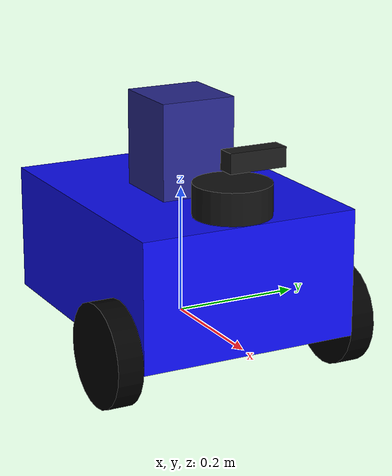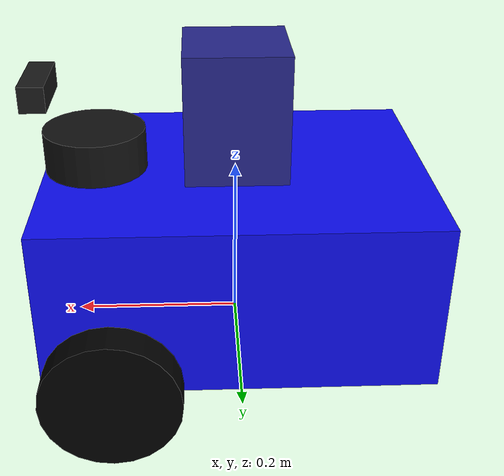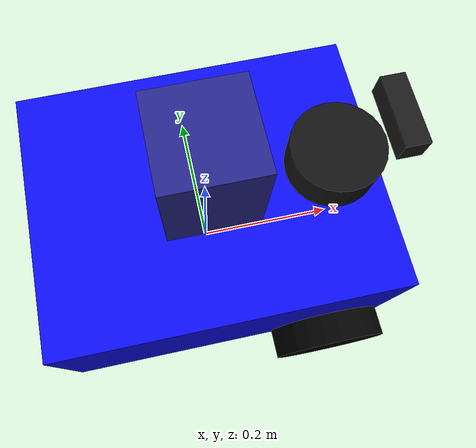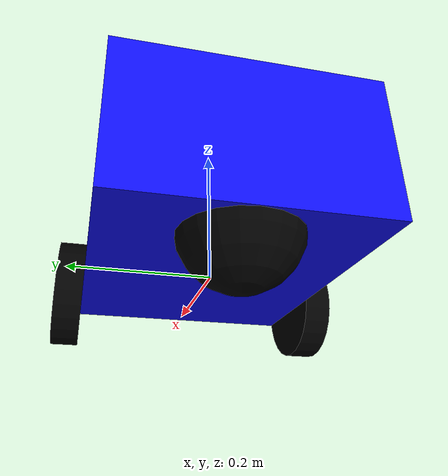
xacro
<?xml version="1.0"?>

<robot name="justina_base" xmlns:xacro="http://www.ros.org/wiki/xacro">

    <!-- Robot Parameters -->
    <xacro:property name="PI" value="3.14159265"/>

    <xacro:property name="body_length" value="0.45"/>
    <xacro:property name="body_width" value="0.35"/>
    <xacro:property name="body_height" value="0.20"/>
    <xacro:property name="body_mass" value="20"/>
    <xacro:property name="body_inertia_x" value="${1.0/12.0 * body_mass * (body_height*body_height + body_width*body_width)}"/>
    <xacro:property name="body_inertia_y" value="${1.0/12.0 * body_mass * (body_length*body_length + body_height*body_height)}"/>
    <xacro:property name="body_inertia_z" value="${1.0/12.0 * body_mass * (body_length*body_length + body_width*body_width)}"/>

    <xacro:property name="arm_base_length" value="0.12"/>
    <xacro:property name="arm_base_width" value="0.12"/>
    <xacro:property name="arm_base_height" value="0.16"/>
    <xacro:property name="arm_base_mass" value="1"/>
    <xacro:property name="arm_base_inertia_x" value="${1.0/12.0 * arm_base_mass * (arm_base_height*arm_base_height + arm_base_width* arm_base_width)}"/>
    <xacro:property name="arm_base_inertia_y" value="${1.0/12.0 * arm_base_mass * (arm_base_length*arm_base_length + arm_base_height*arm_base_height)}"/>
    <xacro:property name="arm_base_inertia_z" value="${1.0/12.0 * arm_base_mass * (arm_base_length*arm_base_length + arm_base_width* arm_base_width)}"/>

    <xacro:property name="wheel_radius" value="0.08"/>
    <xacro:property name="wheel_width" value="0.04"/>
    <xacro:property name="wheel_separation" value="${body_width + wheel_width}"/>
    <xacro:property name="wheel_offset" value="${body_length/2 - wheel_radius}"/>
    <xacro:property name="wheel_offset_z" value="0.05"/>
    <xacro:property name="wheel_density" value="900"/> <!-- Ruber -->
    <xacro:property name="wheel_mass" value="${wheel_density * PI * wheel_radius * wheel_radius * wheel_width}"/>
    <xacro:property name="wheel_inertia_x" value="${1.0/12.0 * wheel_mass * (3*wheel_radius*wheel_radius + wheel_width*wheel_width)}"/>
    <xacro:property name="wheel_inertia_y" value="${1.0/12.0 * wheel_mass * (3*wheel_radius*wheel_radius + wheel_width*wheel_width)}"/>
    <xacro:property name="wheel_inertia_z" value="${1.0/2.0 * wheel_mass * wheel_radius * wheel_radius}"/>

    <xacro:property name="caster_radius" value="0.08"/>
    <xacro:property name="caster_offset" value="${body_length/2 - caster_radius}"/>
    <xacro:property name="caster_density" value="0.1"/>
    <xacro:property name="caster_mass" value="${caster_density * 4.0/3.0 * PI * caster_radius * caster_radius * caster_radius}"/>
    <xacro:property name="caster_inertia_x" value="${2.0/5.0 * caster_mass * caster_radius * caster_radius}"/>
    <xacro:property name="caster_inertia_y" value="${2.0/5.0 * caster_mass * caster_radius * caster_radius}"/>
    <xacro:property name="caster_inertia_z" value="${2.0/5.0 * caster_mass * caster_radius * caster_radius}"/>

    <xacro:property name="laser_radius" value="0.06"/>
    <xacro:property name="laser_height" value="0.05"/>
    <xacro:property name="laser_mass" value="0.2"/>
    <xacro:property name="laser_inertia_xx" value="${(1/12) * laser_mass * (3*laser_radius*laser_radius + laser_height*laser_height)}"/>
    <xacro:property name="laser_inertia_yy" value="${(1/12) * laser_mass * (3*laser_radius*laser_radius + laser_height*laser_height)}"/>
    <xacro:property name="laser_inertia_zz" value="${(1/2) * laser_mass * laser_radius*laser_radius}"/>

    <!-- Control Parameters -->
    <xacro:property name="max_linear_acceleration" value="10"/>

    <!-- Links -->
    <link name="base_link"/>
    <!-- Body Link -->
    <link name="body_link">
        <visual>
            <origin xyz="0.0 0.0 0.0" rpy="0.0 0.0 0.0"/>
            <geometry>
                <box size="${body_length} ${body_width} ${body_height}"/>
            </geometry>
            <material name="body_material">
                <color rgba="0.05 0.05 0.95 1.0"/>
            </material>
        </visual>
        <collision>
            <origin xyz="0.0 0.0 0.0" rpy="0.0 0.0 0.0"/>
            <geometry>
                <box size="${body_length} ${body_width} ${body_height}"/>
            </geometry>
        </collision>
        <inertial>
            <mass value="${body_mass}"/>
            <inertia ixx="${body_inertia_x}" ixy="0.0" ixz="0.0" iyy="${body_inertia_y}" iyz="0" izz="${body_inertia_z}"/>
            <origin xyz="0 0 0" rpy="0 0 0"/>
        </inertial>
    </link>

    <link name="arm_base_link">
        <visual>
            <origin xyz="0.0 0.0 0.0" rpy="0.0 0.0 0.0"/>
            <geometry>
                <box size="${arm_base_length} ${arm_base_width} ${arm_base_height}"/>
            </geometry>
            <material name="arm_base_material">
                <color rgba="0.15 0.15 0.55 1.0"/>
            </material>
        </visual>
        <collision>
            <origin xyz="0.0 0.0 0.0" rpy="0.0 0.0 0.0"/>
            <geometry>
                <box size="${arm_base_length} ${arm_base_width} ${arm_base_height}"/>
            </geometry>
        </collision>
        <inertial>
            <mass value="${arm_base_mass}"/>
            <inertia ixx="${arm_base_inertia_x}" ixy="0.0" ixz="0.0" iyy="${arm_base_inertia_y}" iyz="0" izz="${arm_base_inertia_z}"/>
            <origin xyz="0 0 0" rpy="0 0 0"/>
        </inertial>
    </link>

    <!-- Left Wheel -->
    <link name="left_wheel_link">
        <visual>
            <origin xyz="0.0 0.0 0.0" rpy="1.570795 0.0 0.0"/>
            <geometry>
                <cylinder radius="${wheel_radius}" length="${wheel_width}"/>
            </geometry>
            <material name="left_wheel_material">
                <color rgba="0.0 0.0 0.0 1.0"/>
            </material>
        </visual>
        <collision>
            <origin xyz="0.0 0.0 0.0" rpy="1.570795 0.0 0.0"/>
            <geometry>
                <cylinder radius="${wheel_radius}" length="${wheel_width}"/>
            </geometry>
        </collision>
        <inertial>
            <mass value="2"/>
            <inertia ixx="${wheel_inertia_x}" ixy="0.0" ixz="0.0" iyy="${wheel_inertia_y}" iyz="0" izz="${wheel_inertia_z}"/>
            <origin xyz="0.0 0.0 0.0" rpy="1.570795 0.0 0.0"/>
        </inertial>
    </link>

    <!-- Right Wheel -->
    <link name="right_wheel_link">
        <visual>
            <origin xyz="0.0 0.0 0.0" rpy="1.570795 0.0 0.0"/>
            <geometry>
                <cylinder radius="${wheel_radius}" length="${wheel_width}"/>
            </geometry>
            <material name="right_wheel_material">
                <color rgba="0.0 0.0 0.0 1.0"/>
            </material>
        </visual>
        <collision>
            <origin xyz="0.0 0.0 0.0" rpy="1.570795 0.0 0.0"/>
            <geometry>
                <cylinder radius="${wheel_radius}" length="${wheel_width}"/>
            </geometry>
        </collision>
        <inertial>
            <mass value="2"/>
            <inertia ixx="${wheel_inertia_x}" ixy="0.0" ixz="0.0" iyy="${wheel_inertia_y}" iyz="0" izz="${wheel_inertia_z}"/>
            <origin xyz="0.0 0.0 0.0" rpy="1.570795 0.0 0.0"/>
        </inertial>
    </link>

    <!-- Caster Wheel -->
    <link name="caster_link">
        <visual>
            <origin xyz="0.0 0.0 0.0" rpy="0.0 0.0 0.0"/>
            <geometry>
                <sphere radius="${caster_radius}"/>
            </geometry>
            <material name="caster_material">
                <color rgba="0.0 0.0 0.0 1.0"/>
            </material>
        </visual>
        <collision>
            <origin xyz="0.0 0.0 0.0" rpy="0.0 0.0 0.0"/>
            <geometry>
                <sphere radius="${caster_radius}"/>
            </geometry>
        </collision>
        <inertial>
            <mass value="0.5"/>
            <inertia ixx="${caster_inertia_x}" ixy="0.0" ixz="0.0" iyy="${caster_inertia_y}" iyz="0" izz="${caster_inertia_z}"/>
            <origin xyz="0 0 0" rpy="0 0 0"/>
        </inertial>
    </link>

    <link name="laser_link">
      <visual>
         <origin xyz="0 0 0"/>
         <geometry>
            <cylinder length="${laser_height}" radius="${laser_radius}"/>
         </geometry>
         <material name="laser_material">
            <color rgba="0.07 0.07 0.07 1.0"/>
         </material>
      </visual>
      <collision>
         <origin xyz="0 0 0"/>
         <geometry>
            <cylinder length="${laser_height}" radius="${laser_radius}"/>
         </geometry>
      </collision>
      <inertial>
        <mass value="${laser_mass}"/>
        <inertia ixx="${laser_inertia_xx}" ixy="0.0" ixz="0.0" iyy="${laser_inertia_yy}" iyz="0" izz="${laser_inertia_zz}"/>
        <origin xyz="0 0 0" rpy="0 0 0"/>
      </inertial>
   </link>

   <!-- Joints -->
   <joint name="base_to_body" type="fixed">
     <origin xyz="0 0 ${body_height/2}" rpy="0 0 0"/>
     <parent link="base_link"/>
     <child link="body_link"/>
   </joint>

   <!-- Base to arm base -->
   <joint name="arm_base_joint" type="fixed">
     <origin xyz="0 0 0.17" rpy="0 0 0"/>
     <parent link="body_link"/>
     <child link="arm_base_link"/>
   </joint>

   <!-- Left Wheel Joint -->
   <joint name="left_wheel_joint" type="continuous">
     <origin xyz="${wheel_offset} ${wheel_separation/2} ${-wheel_radius/2 - wheel_offset_z}" rpy="0 0 0"/>
     <parent link="body_link"/>
     <child link="left_wheel_link"/>
     <axis xyz="0 1 0"/>
     <limit effort="100" velocity="10.0"/>
     <dynamics damping="0.1" friction="0.1"/>
   </joint>

   <!-- Right Wheel Joint -->
   <joint name="right_wheel_joint" type="continuous">
        <origin xyz="${wheel_offset} ${-wheel_separation/2} ${-wheel_radius/2 - wheel_offset_z}" rpy="0 0 0"/>
        <parent link="body_link"/>
        <child link="right_wheel_link"/>
        <axis xyz="0 1 0"/>
        <limit effort="100" velocity="10.0"/>
        <dynamics damping="0.1" friction="0.1"/>
    </joint>

    <!-- Caster Wheel Joint (fixed) -->
    <joint name="caster_joint" type="fixed">
        <origin xyz="${-caster_offset} 0 ${-caster_radius/2 - wheel_offset_z}" rpy="0 0 0"/>
        <parent link="body_link"/>
        <child link="caster_link"/>
    </joint>

    <!-- Body to laser joint -->
    <joint name="laser_joint" type="fixed">
      <origin xyz="${body_length/2 - laser_radius} 0.0 ${body_height/2+laser_height/2}" rpy="0 0 0"/>
      <parent link="body_link"/>
      <child link="laser_link"/>
    </joint>

    <!-- Gazebo Parameters -->
    <gazebo reference="body_link">
        <mu1>1.0</mu1>
        <mu2>1.0</mu2>
    </gazebo>

    <gazebo reference="right_wheel_link">
        <mu1>1.0</mu1>
        <mu2>1.0</mu2>
    </gazebo>

    <gazebo reference="left_wheel_link">
        <mu1>1.0</mu1>
        <mu2>1.0</mu2>
    </gazebo>

    <gazebo reference="caster_link">
        <mu1>0.000001</mu1>
        <mu2>0.000001</mu2>
    </gazebo>

    <gazebo reference="laser_link">
        <mu1>1.0</mu1>
        <mu2>1.0</mu2>
    </gazebo>

    <!-- Gazebo Plugins -->
    <gazebo>
      <plugin filename="gz-sim-diff-drive-system" name="gz::sim::systems::DiffDrive">
        <right_joint>right_wheel_joint</right_joint>
        <left_joint>left_wheel_joint</left_joint>
        <wheel_separation>${wheel_separation}</wheel_separation>
        <wheel_radius>${wheel_radius}</wheel_radius>
        <max_linear_acceleration>${max_linear_acceleration}</max_linear_acceleration>
        <odom_publish_frequency>20</odom_publish_frequency>
        <topic>cmd_vel</topic>
        <tf_topic>tf</tf_topic>
        <frame_id>/odom</frame_id>
        <child_frame_id>/base_link</child_frame_id>
        <odom_topic>odom</odom_topic>
      </plugin>

      <plugin filename="gz-sim-joint-state-publisher-system" name="gz::sim::systems::JointStatePublisher">
        <topic>joint_states</topic>
        <joint_name>right_wheel_joint</joint_name>
        <joint_name>left_wheel_joint</joint_name>
      </plugin>

      <plugin filename="gz-sim-pose-publisher-system" name="gz::sim::systems::PosePublisher">
        <publish_link_pose>true</publish_link_pose>
        <publish_nested_model_pose>true</publish_nested_model_pose>
        <use_pose_vector_msg>true</use_pose_vector_msg>
        <update_frequency>10</update_frequency>
      </plugin>
    </gazebo>

    <gazebo reference="laser_link">
      <sensor name="laser" type="gpu_lidar">
         <pose> 0 0 0 0 0 0 </pose>
         <always_on>true</always_on>
         <visualize>true</visualize>
         <update_rate>10</update_rate>
         <topic>scan</topic>
         <gz_frame_id>laser_link</gz_frame_id>
         <lidar>
           <scan>
             <horizontal>
               <samples>480</samples>
               <min_angle>-2.0944</min_angle>
               <max_angle>2.0944</max_angle>
             </horizontal>
           </scan>
           <range>
             <min>0.1</min>
             <max>10.0</max>
           </range>
           <noise>
             <type>gaussian</type>
             <mean>0.0</mean>
             <stddev>0.02</stddev>
           </noise>
         </lidar>
      </sensor>
    </gazebo>

    <!-- ===== CAMARA FRONTAL FIJA (proyecto final - para YOLO) ===== -->
    <link name="camera_front_link">
      <visual>
        <origin xyz="0 0 0" rpy="0 0 0"/>
        <geometry>
          <box size="0.03 0.09 0.03"/>
        </geometry>
        <material name="camera_front_material">
          <color rgba="0.1 0.1 0.1 1.0"/>
        </material>
      </visual>
      <collision>
        <origin xyz="0 0 0" rpy="0 0 0"/>
        <geometry>
          <box size="0.03 0.09 0.03"/>
        </geometry>
      </collision>
      <inertial>
        <mass value="0.05"/>
        <inertia ixx="0.0001" ixy="0.0" ixz="0.0" iyy="0.0001" iyz="0.0" izz="0.0001"/>
        <origin xyz="0 0 0" rpy="0 0 0"/>
      </inertial>
    </link>

    <joint name="camera_front_joint" type="fixed">
      <origin xyz="${body_length/2} 0 ${body_height/2 + 0.10}" rpy="0 0 0"/>
      <parent link="body_link"/>
      <child link="camera_front_link"/>
    </joint>

    <gazebo reference="camera_front_link">
      <sensor name="front_camera" type="camera">
        <always_on>true</always_on>
        <visualize>true</visualize>
        <update_rate>10</update_rate>
        <topic>front_camera/image</topic>
        <gz_frame_id>camera_front_link</gz_frame_id>
        <camera>
          <horizontal_fov>1.047</horizontal_fov>
          <image>
            <width>640</width>
            <height>480</height>
            <format>R8G8B8</format>
          </image>
          <clip>
            <near>0.1</near>
            <far>20.0</far>
          </clip>
        </camera>
      </sensor>
    </gazebo>
    <!-- ===== FIN CAMARA FRONTAL ===== -->

</robot>
